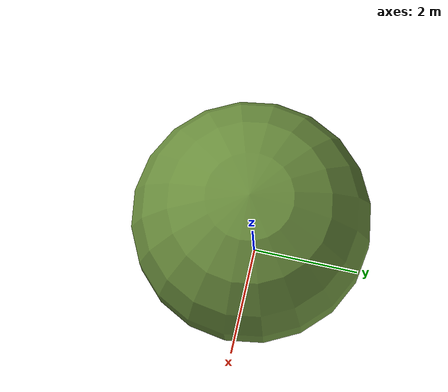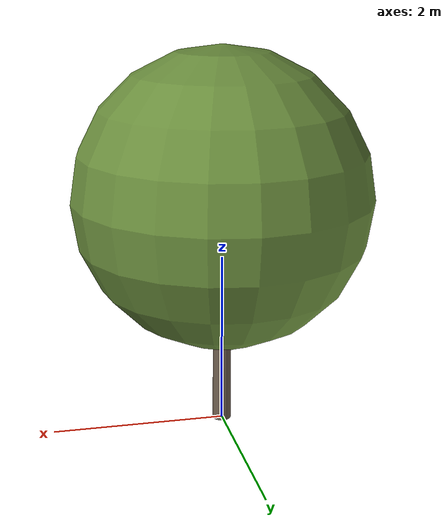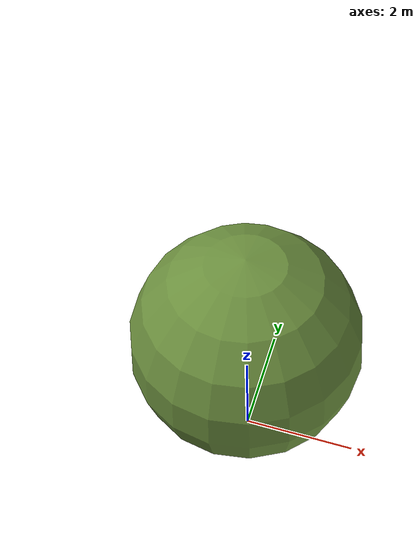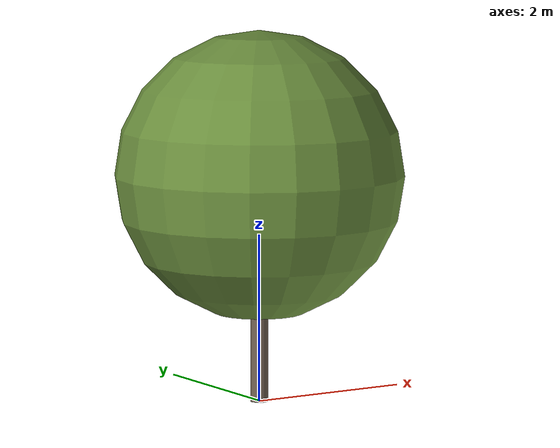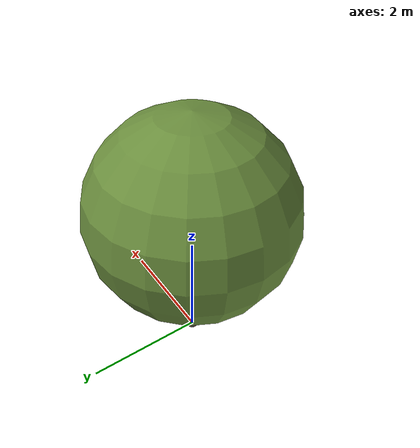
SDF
<?xml version="1.0" ?>
<sdf version="1.10">
  <model name="olivier_provence_15">
    <static>true</static>

    <!-- Tronc -->
    <link name="trunk">
      <pose>0 0 1.097828586333659 0 0 0</pose>
      <visual name="trunk_visual">
        <geometry>
          <cylinder>
            <radius>0.10621298041483423</radius>
            <length>2.195657172667318</length>
          </cylinder>
        </geometry>
        <material>
          <ambient>0.42 0.36 0.30 1</ambient>
          <diffuse>0.42 0.36 0.30 1</diffuse>
          <specular>0.1 0.1 0.1 1</specular>
        </material>
      </visual>
      <collision name="trunk_collision">
        <geometry>
          <cylinder>
            <radius>0.10621298041483423</radius>
            <length>2.195657172667318</length>
          </cylinder>
        </geometry>
      </collision>
    </link>

    <!-- Feuillage -->
    <link name="crown">
      <pose>0 0 2.7119715048920643 0 0 0</pose>
      <visual name="crown_visual">
        <geometry>
          <sphere>
              <radius>1.7210477740824879</radius>
            </sphere>
        </geometry>
        <material>
          <ambient>0.42 0.56 0.24 1</ambient>
          <diffuse>0.42 0.56 0.24 1</diffuse>
          <specular>0.1 0.1 0.1 1</specular>
        </material>
      </visual>
      <collision name="crown_collision">
        <geometry>
          <sphere>
            <radius>1.3768382192659905</radius>
          </sphere>
        </geometry>
      </collision>
    </link>

    <!-- Joint tronc-feuillage -->
    <joint name="trunk_crown_joint" type="fixed">
      <parent>trunk</parent>
      <child>crown</child>
    </joint>

  </model>
</sdf>
